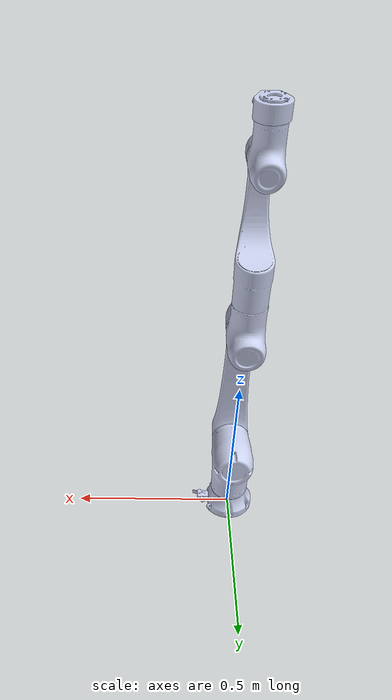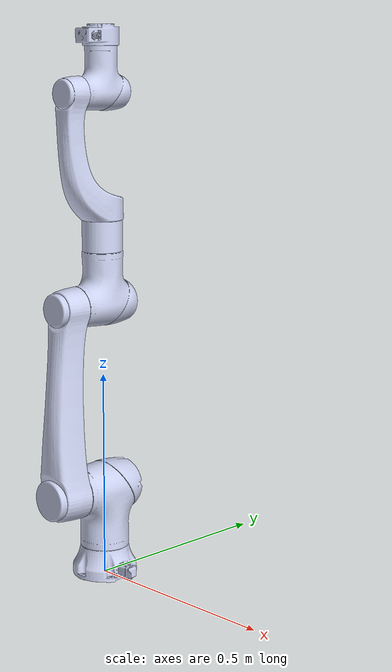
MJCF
<?xml version='1.0' encoding='utf-8'?>
<mujoco model="elfin5_l">
  <compiler angle="radian" />
  <asset>
    <mesh name="elfin_base" file="elfin_base.STL" />
    <mesh name="elfin_link1" file="elfin_link1.STL" />
    <mesh name="elfin_link2" file="elfin_link2.STL" />
    <mesh name="elfin_link3" file="elfin_link3.STL" />
    <mesh name="elfin_link4" file="elfin_link4.STL" />
    <mesh name="elfin_link5" file="elfin_link5.STL" />
    <mesh name="elfin_link6" file="elfin_link6.STL" />
  </asset>
  <worldbody>
    <geom type="mesh" rgba="0.792157 0.819608 0.933333 1" mesh="elfin_base" />
    <body name="elfin_link1" pos="0 0 0.22">
      <inertial pos="3.55429e-05 -0.0238033 -0.056664" quat="0.687346 0.162556 -0.148406 0.692176" mass="1.71757" diaginertia="0.00387978 0.00313313 0.00303939" />
      <joint name="elfin_joint1" pos="0 0 0" axis="0 0 1" range="-3.14 3.14" actuatorfrcrange="-104 104" />
      <geom type="mesh" rgba="0.792157 0.819608 0.933333 1" mesh="elfin_link1" />
      <body name="elfin_link2" quat="0.707105 0.707108 0 0">
        <inertial pos="-8.02321e-06 0.194763 0.128889" quat="0.507085 0.492601 -0.492824 0.50728" mass="1.10523" diaginertia="0.0230609 0.0225843 0.00150199" />
        <joint name="elfin_joint2" pos="0 0 0" axis="0 0 1" range="-2.35 2.35" actuatorfrcrange="-104 104" />
        <geom type="mesh" rgba="0.792157 0.819608 0.933333 1" mesh="elfin_link2" />
        <body name="elfin_link3" pos="0 0.455 0" quat="-2.59734e-06 -0.707105 -0.707108 -2.59735e-06">
          <inertial pos="0.0461695 1.67843e-05 -0.021072" quat="0.00222657 0.508343 -0.000183137 0.861152" mass="1.07591" diaginertia="0.0016169 0.00135308 0.00130534" />
          <joint name="elfin_joint3" pos="0 0 0" axis="0 0 1" range="-2.61 2.61" actuatorfrcrange="-69 69" />
          <geom type="mesh" rgba="0.792157 0.819608 0.933333 1" mesh="elfin_link3" />
          <body name="elfin_link4" quat="0.499998 0.5 0.500002 0.5">
            <inertial pos="-2.52415e-05 -0.0426486 0.29613" quat="0.986347 0.164679 -0.000406735 0.000860384" mass="0.773486" diaginertia="0.00659537 0.00648909 0.0011968" />
            <joint name="elfin_joint4" pos="0 0 0" axis="0 0 1" range="-3.14 3.14" actuatorfrcrange="-69 69" />
            <geom type="mesh" rgba="0.792157 0.819608 0.933333 1" mesh="elfin_link4" />
            <body name="elfin_link5" pos="0 0 0.495" quat="0.707105 -0.707108 0 0">
              <inertial pos="3.81842e-06 -0.0392748 -0.0166117" quat="0.606568 0.364695 -0.363337 0.605854" mass="0.569195" diaginertia="0.000566967 0.000498993 0.000439907" />
              <joint name="elfin_joint5" pos="0 0 0" axis="0 0 1" range="-2.56 2.56" actuatorfrcrange="-34 34" />
              <geom type="mesh" rgba="0.792157 0.819608 0.933333 1" mesh="elfin_link5" />
              <body name="elfin_link6" quat="0.707105 0.707108 0 0">
                <inertial pos="-0.000297022 -0.00761155 0.133928" quat="0.524354 0.474518 -0.543334 0.452408" mass="0.128337" diaginertia="0.000133513 7.91027e-05 7.82026e-05" />
                <joint name="elfin_joint6" pos="0 0 0" axis="0 0 1" range="-3.14 3.14" actuatorfrcrange="-34 34" />
                <geom type="mesh" rgba="0.792157 0.819608 0.933333 1" mesh="elfin_link6" />
              </body>
            </body>
          </body>
        </body>
      </body>
    </body>
  </worldbody>
  <actuator>
    <general name="elfin_joint1_actuator" joint="elfin_joint1" gainprm="1" ctrlrange="-3.14 3.14" />
    <general name="elfin_joint2_actuator" joint="elfin_joint2" gainprm="1" ctrlrange="-3.14 3.14" />
    <general name="elfin_joint3_actuator" joint="elfin_joint3" gainprm="1" ctrlrange="-3.14 3.14" />
    <general name="elfin_joint4_actuator" joint="elfin_joint4" gainprm="1" ctrlrange="-3.14 3.14" />
    <general name="elfin_joint5_actuator" joint="elfin_joint5" gainprm="1" ctrlrange="-3.14 3.14" />
    <general name="elfin_joint6_actuator" joint="elfin_joint6" gainprm="1" ctrlrange="-3.14 3.14" />
  </actuator>
  <keyframe>
    <key name="home" qpos="0 0 0 0 0 0" />
  </keyframe>
</mujoco>
